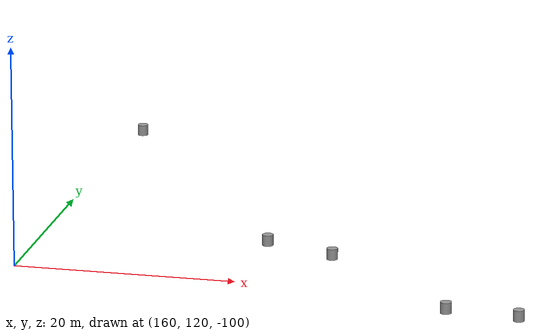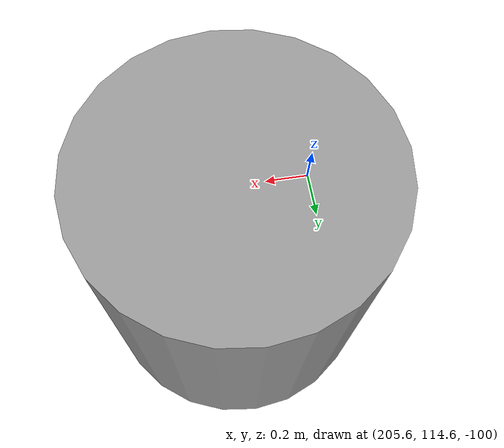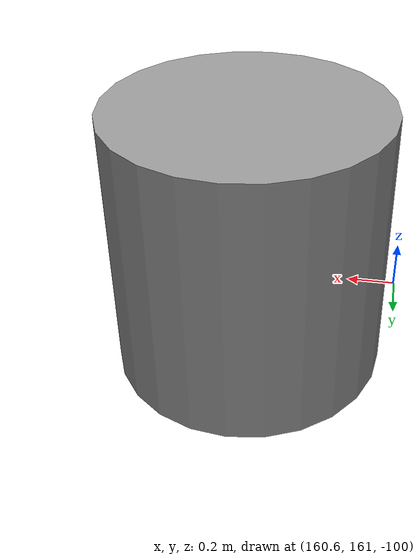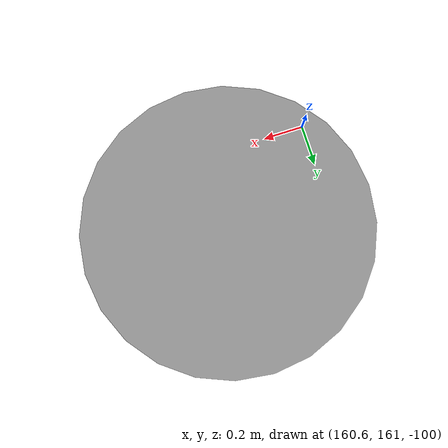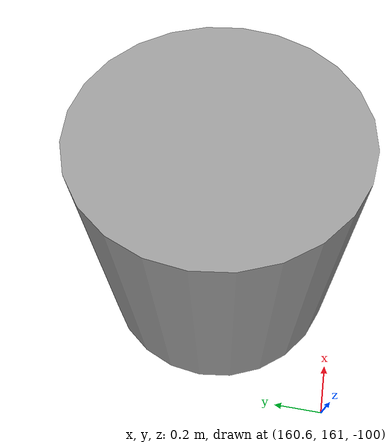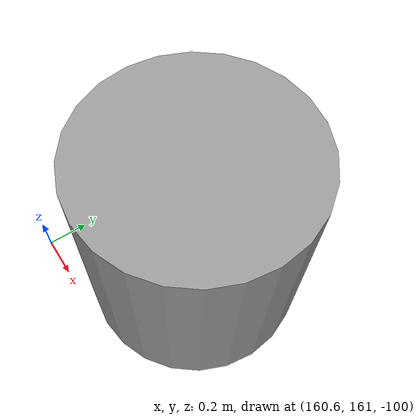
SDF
<sdf version="1.6">
 <world name="lake">
  <physics name="default_physics" default="1" type="ode">
   <max_step_size>0.002</max_step_size>
   <real_time_factor>1</real_time_factor>
   <real_time_update_rate>500</real_time_update_rate>
   <ode>
    <solver>
     <type>quick</type>
     <iters>50</iters>
     <sor>0.5</sor>
     <use_dynamic_moi_rescaling>0</use_dynamic_moi_rescaling>
    </solver>
    <constraints>
     <cfm>0</cfm>
     <erp>0.2</erp>
     <contact_max_correcting_vel>100</contact_max_correcting_vel>
     <contact_surface_layer>0.001</contact_surface_layer>
    </constraints>
   </ode>
  </physics>
  <scene>
   <ambient>0.01 0.01 0.01 1</ambient>
   <sky><clouds><speed>12</speed></clouds></sky>
   <shadows>1</shadows>
   <background>0.7 0.7 0.7 1</background>
  </scene>
  <light name="sun" type="directional">
   <pose>0 0 10 0 -0 0</pose>
   <diffuse>0.8 0.8 0.8 1</diffuse>
   <specular>0.1 0.1 0.1 1</specular>
   <attenuation>
    <range>1000</range>
    <constant>0.9</constant>
    <linear>0.01</linear>
    <quadratic>0.001</quadratic>
   </attenuation>
   <direction>-0.5 0.5 -1</direction>
  </light>
  <gravity>0 0 -9.8</gravity>
  <magnetic_field>6e-06 2.3e-05 -4.2e-05</magnetic_field>
  <atmosphere type="adiabatic"/>
  <spherical_coordinates>
   <surface_model>EARTH_WGS84</surface_model>
   <latitude_deg>0</latitude_deg>
   <longitude_deg>0</longitude_deg>
   <elevation>0</elevation>
   <heading_deg>0</heading_deg>
  </spherical_coordinates>
  <model name="unit_cylinder_0">
   <pose>199.572 115.76 -99.45 -1e-05 2.4e-05 0.000207</pose>
   <link name="link">
    <inertial>
     <mass>1</mass>
     <inertia><ixx>0.145833</ixx><ixy>0</ixy><ixz>0</ixz><iyy>0.145833</iyy><iyz>0</iyz><izz>0.125</izz></inertia>
    </inertial>
    <collision name="collision">
     <geometry><cylinder><radius>0.5</radius><length>1</length></cylinder></geometry>
    </collision>
    <visual name="visual">
     <geometry><cylinder><radius>0.5</radius><length>1</length></cylinder></geometry>
     <material>
      <script><name>Gazebo/Grey</name><uri>file://media/materials/scripts/gazebo.material</uri></script>
     </material>
    </visual>
   </link>
  </model>
  <model name="unit_cylinder_1">
   <pose>161.16 161.535 -99.45 -1e-06 2e-06 0.000803</pose>
   <link name="link">
    <inertial>
     <mass>1</mass>
     <inertia><ixx>0.145833</ixx><ixy>0</ixy><ixz>0</ixz><iyy>0.145833</iyy><iyz>0</iyz><izz>0.125</izz></inertia>
    </inertial>
    <collision name="collision">
     <geometry><cylinder><radius>0.5</radius><length>1</length></cylinder></geometry>
    </collision>
    <visual name="visual">
     <geometry><cylinder><radius>0.5</radius><length>1</length></cylinder></geometry>
     <material>
      <script><name>Gazebo/Grey</name><uri>file://media/materials/scripts/gazebo.material</uri></script>
     </material>
    </visual>
   </link>
  </model>
  <model name="unit_cylinder_2">
   <pose>186.978 128.054 -99.45 -1.2e-05 2.3e-05 0.000198</pose>
   <link name="link">
    <inertial>
     <mass>1</mass>
     <inertia><ixx>0.145833</ixx><ixy>0</ixy><ixz>0</ixz><iyy>0.145833</iyy><iyz>0</iyz><izz>0.125</izz></inertia>
    </inertial>
    <collision name="collision">
     <geometry><cylinder><radius>0.5</radius><length>1</length></cylinder></geometry>
    </collision>
    <visual name="visual">
     <geometry><cylinder><radius>0.5</radius><length>1</length></cylinder></geometry>
     <material>
      <script><name>Gazebo/Grey</name><uri>file://media/materials/scripts/gazebo.material</uri></script>
     </material>
    </visual>
   </link>
  </model>
  <model name="unit_cylinder_3">
   <pose>180.533 130.648 -99.45 -1.6e-05 3.5e-05 0.000458</pose>
   <link name="link">
    <inertial>
     <mass>1</mass>
     <inertia><ixx>0.145833</ixx><ixy>0</ixy><ixz>0</ixz><iyy>0.145833</iyy><iyz>0</iyz><izz>0.125</izz></inertia>
    </inertial>
    <collision name="collision">
     <geometry><cylinder><radius>0.5</radius><length>1</length></cylinder></geometry>
    </collision>
    <visual name="visual">
     <geometry><cylinder><radius>0.5</radius><length>1</length></cylinder></geometry>
     <material>
      <script><name>Gazebo/Grey</name><uri>file://media/materials/scripts/gazebo.material</uri></script>
     </material>
    </visual>
   </link>
  </model>
  <model name="unit_cylinder_4">
   <pose>206.017 115.112 -99.45 -1.3e-05 3.2e-05 0.000203</pose>
   <link name="link">
    <inertial>
     <mass>1</mass>
     <inertia><ixx>0.145833</ixx><ixy>0</ixy><ixz>0</ixz><iyy>0.145833</iyy><iyz>0</iyz><izz>0.125</izz></inertia>
    </inertial>
    <collision name="collision">
     <geometry><cylinder><radius>0.5</radius><length>1</length></cylinder></geometry>
    </collision>
    <visual name="visual">
     <geometry><cylinder><radius>0.5</radius><length>1</length></cylinder></geometry>
     <material>
      <script><name>Gazebo/Grey</name><uri>file://media/materials/scripts/gazebo.material</uri></script>
     </material>
    </visual>
   </link>
  </model>
 </world>
</sdf>
